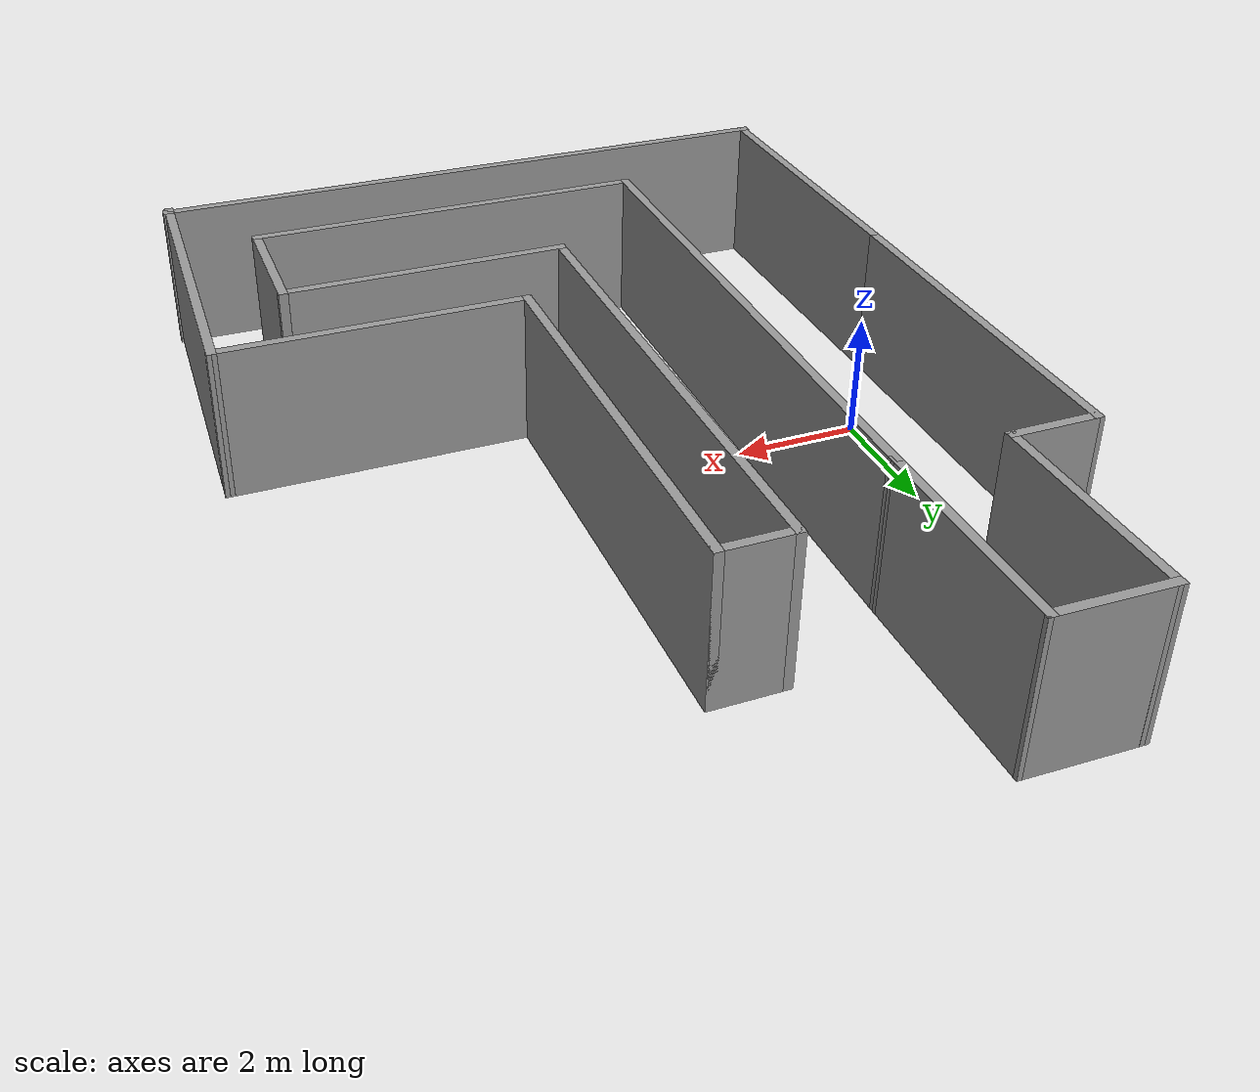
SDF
<?xml version='1.0'?>
<sdf version='1.6'>
  <model name='room'>
    <pose frame=''>4.26083 0.302607 0 0 -0 0</pose>
    <link name='Wall_66'>
      <collision name='Wall_66_Collision'>
        <geometry>
          <box>
            <size>6.19862 0.15 2.5</size>
          </box>
        </geometry>
        <pose frame=''>0 0 1.25 0 -0 0</pose>
      </collision>
      <visual name='Wall_66_Visual'>
        <pose frame=''>0 0 1.25 0 -0 0</pose>
        <geometry>
          <box>
            <size>6.19862 0.15 2.5</size>
          </box>
        </geometry>
        <material>
          <script>
            <uri>file://media/materials/scripts/gazebo.material</uri>
            <name>Gazebo/Grey</name>
          </script>
          <ambient>1 1 1 1</ambient>
        </material>
        <meta>
          <layer>0</layer>
        </meta>
      </visual>
      <pose frame=''>-5.45149 0.872356 0 0 -0 1.56388</pose>
    </link>
    <link name='Wall_68'>
      <collision name='Wall_68_Collision'>
        <geometry>
          <box>
            <size>9.6563 0.15 2.5</size>
          </box>
        </geometry>
        <pose frame=''>0 0 1.25 0 -0 0</pose>
      </collision>
      <visual name='Wall_68_Visual'>
        <pose frame=''>0 0 1.25 0 -0 0</pose>
        <geometry>
          <box>
            <size>9.6563 0.15 2.5</size>
          </box>
        </geometry>
        <material>
          <script>
            <uri>file://media/materials/scripts/gazebo.material</uri>
            <name>Gazebo/Grey</name>
          </script>
          <ambient>1 1 1 1</ambient>
        </material>
        <meta>
          <layer>0</layer>
        </meta>
      </visual>
      <pose frame=''>-2.38333 -0.891441 0 0 -0 -1.5819</pose>
    </link>
    <link name='Wall_69'>
      <collision name='Wall_69_Collision'>
        <geometry>
          <box>
            <size>6.75 0.15 2.5</size>
          </box>
        </geometry>
        <pose frame=''>0 0 1.25 0 -0 0</pose>
      </collision>
      <visual name='Wall_69_Visual'>
        <pose frame=''>0 0 1.25 0 -0 0</pose>
        <geometry>
          <box>
            <size>6.75 0.15 2.5</size>
          </box>
        </geometry>
        <material>
          <script>
            <uri>file://media/materials/scripts/gazebo.material</uri>
            <name>Gazebo/Grey</name>
          </script>
          <ambient>1 1 1 1</ambient>
        </material>
        <meta>
          <layer>0</layer>
        </meta>
      </visual>
      <pose frame=''>0.863902 -5.6443 0 0 -0 0</pose>
    </link>
    <link name='Wall_70'>
      <collision name='Wall_70_Collision'>
        <geometry>
          <box>
            <size>2.25 0.15 2.5</size>
          </box>
        </geometry>
        <pose frame=''>0 0 1.25 0 -0 0</pose>
      </collision>
      <visual name='Wall_70_Visual'>
        <pose frame=''>0 0 1.25 0 -0 0</pose>
        <geometry>
          <box>
            <size>2.25 0.15 2.5</size>
          </box>
        </geometry>
        <material>
          <script>
            <uri>file://media/materials/scripts/gazebo.material</uri>
            <name>Gazebo/Grey</name>
          </script>
          <ambient>1 1 1 1</ambient>
        </material>
        <meta>
          <layer>0</layer>
        </meta>
      </visual>
      <pose frame=''>4.1639 -4.5943 0 0 -0 1.5708</pose>
    </link>
    <link name='Wall_71'>
      <collision name='Wall_71_Collision'>
        <geometry>
          <box>
            <size>4.75 0.15 2.5</size>
          </box>
        </geometry>
        <pose frame=''>0 0 1.25 0 -0 0</pose>
      </collision>
      <visual name='Wall_71_Visual'>
        <pose frame=''>0 0 1.25 0 -0 0</pose>
        <geometry>
          <box>
            <size>4.75 0.15 2.5</size>
          </box>
        </geometry>
        <material>
          <script>
            <uri>file://media/materials/scripts/gazebo.material</uri>
            <name>Gazebo/Grey</name>
          </script>
          <ambient>1 1 1 1</ambient>
        </material>
        <meta>
          <layer>0</layer>
        </meta>
      </visual>
      <pose frame=''>1.8639 -3.5443 0 0 -0 3.14159</pose>
    </link>
    <link name='Wall_72'>
      <collision name='Wall_72_Collision'>
        <geometry>
          <box>
            <size>8.5 0.15 2.5</size>
          </box>
        </geometry>
        <pose frame=''>0 0 1.25 0 -0 0</pose>
      </collision>
      <visual name='Wall_72_Visual'>
        <pose frame=''>0 0 1.25 0 -0 0</pose>
        <geometry>
          <box>
            <size>8.5 0.15 2.5</size>
          </box>
        </geometry>
        <material>
          <script>
            <uri>file://media/materials/scripts/gazebo.material</uri>
            <name>Gazebo/Grey</name>
          </script>
          <ambient>1 1 1 1</ambient>
        </material>
        <meta>
          <layer>0</layer>
        </meta>
      </visual>
      <pose frame=''>-0.436098 0.630704 0 0 -0 1.5708</pose>
    </link>
    <link name='Wall_73'>
      <collision name='Wall_73_Collision'>
        <geometry>
          <box>
            <size>1.25 0.15 2.5</size>
          </box>
        </geometry>
        <pose frame=''>0 0 1.25 0 -0 0</pose>
      </collision>
      <visual name='Wall_73_Visual'>
        <pose frame=''>0 0 1.25 0 -0 0</pose>
        <geometry>
          <box>
            <size>1.25 0.15 2.5</size>
          </box>
        </geometry>
        <material>
          <script>
            <uri>file://media/materials/scripts/gazebo.material</uri>
            <name>Gazebo/Grey</name>
          </script>
          <ambient>1 1 1 1</ambient>
        </material>
        <meta>
          <layer>0</layer>
        </meta>
      </visual>
      <pose frame=''>0.113902 4.8057 0 0 -0 0</pose>
    </link>
    <link name='Wall_74'>
      <collision name='Wall_74_Collision'>
        <geometry>
          <box>
            <size>7 0.15 2.5</size>
          </box>
        </geometry>
        <pose frame=''>0 0 1.25 0 -0 0</pose>
      </collision>
      <visual name='Wall_74_Visual'>
        <pose frame=''>0 0 1.25 0 -0 0</pose>
        <geometry>
          <box>
            <size>7 0.15 2.5</size>
          </box>
        </geometry>
        <material>
          <script>
            <uri>file://media/materials/scripts/gazebo.material</uri>
            <name>Gazebo/Grey</name>
          </script>
          <ambient>1 1 1 1</ambient>
        </material>
        <meta>
          <layer>0</layer>
        </meta>
      </visual>
      <pose frame=''>0.663902 1.3807 0 0 -0 -1.5708</pose>
    </link>
    <link name='Wall_75'>
      <collision name='Wall_75_Collision'>
        <geometry>
          <box>
            <size>5 0.15 2.5</size>
          </box>
        </geometry>
        <pose frame=''>0 0 1.25 0 -0 0</pose>
      </collision>
      <visual name='Wall_75_Visual'>
        <pose frame=''>0 0 1.25 0 -0 0</pose>
        <geometry>
          <box>
            <size>5 0.15 2.5</size>
          </box>
        </geometry>
        <material>
          <script>
            <uri>file://media/materials/scripts/gazebo.material</uri>
            <name>Gazebo/Grey</name>
          </script>
          <ambient>1 1 1 1</ambient>
        </material>
        <meta>
          <layer>0</layer>
        </meta>
      </visual>
      <pose frame=''>3.0889 -2.0443 0 0 -0 0</pose>
    </link>
    <link name='Wall_76'>
      <collision name='Wall_76_Collision'>
        <geometry>
          <box>
            <size>5.35369 0.15 2.5</size>
          </box>
        </geometry>
        <pose frame=''>0 0 1.25 0 -0 0</pose>
      </collision>
      <visual name='Wall_76_Visual'>
        <pose frame=''>0 0 1.25 0 -0 0</pose>
        <geometry>
          <box>
            <size>5.35369 0.15 2.5</size>
          </box>
        </geometry>
        <material>
          <script>
            <uri>file://media/materials/scripts/gazebo.material</uri>
            <name>Gazebo/Grey</name>
          </script>
          <ambient>1 1 1 1</ambient>
        </material>
        <meta>
          <layer>0</layer>
        </meta>
      </visual>
      <pose frame=''>5.44355 -4.64519 0 0 -0 -1.59784</pose>
    </link>
    <link name='Wall_77'>
      <collision name='Wall_77_Collision'>
        <geometry>
          <box>
            <size>11.0742 0.15 2.5</size>
          </box>
        </geometry>
        <pose frame=''>0 0 1.25 0 -0 0</pose>
      </collision>
      <visual name='Wall_77_Visual'>
        <pose frame=''>0 0 1.25 0 -0 0</pose>
        <geometry>
          <box>
            <size>11.0742 0.15 2.5</size>
          </box>
        </geometry>
        <material>
          <script>
            <uri>file://media/materials/scripts/gazebo.material</uri>
            <name>Gazebo/Grey</name>
          </script>
          <ambient>1 1 1 1</ambient>
        </material>
        <meta>
          <layer>0</layer>
        </meta>
      </visual>
      <pose frame=''>-0.053716 -7.16812 0 0 -0 3.1402</pose>
    </link>
    <link name='Wall_78'>
      <collision name='Wall_78_Collision'>
        <geometry>
          <box>
            <size>5.12346 0.15 2.5</size>
          </box>
        </geometry>
        <pose frame=''>0 0 1.25 0 -0 0</pose>
      </collision>
      <visual name='Wall_78_Visual'>
        <pose frame=''>0 0 1.25 0 -0 0</pose>
        <geometry>
          <box>
            <size>5.12346 0.15 2.5</size>
          </box>
        </geometry>
        <material>
          <script>
            <uri>file://media/materials/scripts/gazebo.material</uri>
            <name>Gazebo/Grey</name>
          </script>
          <ambient>1 1 1 1</ambient>
        </material>
        <meta>
          <layer>0</layer>
        </meta>
      </visual>
      <pose frame=''>-5.47652 -4.67379 0 0 -0 1.56915</pose>
    </link>
    <link name='Wall_80'>
      <collision name='Wall_80_Collision'>
        <geometry>
          <box>
            <size>1.5 0.15 2.5</size>
          </box>
        </geometry>
        <pose frame=''>0 0 1.25 0 -0 0</pose>
      </collision>
      <visual name='Wall_80_Visual'>
        <pose frame=''>0 0 1.25 0 -0 0</pose>
        <geometry>
          <box>
            <size>1.5 0.15 2.5</size>
          </box>
        </geometry>
        <material>
          <script>
            <uri>file://media/materials/scripts/gazebo.material</uri>
            <name>Gazebo/Grey</name>
          </script>
          <ambient>1 1 1 1</ambient>
        </material>
        <meta>
          <layer>0</layer>
        </meta>
      </visual>
      <pose frame=''>-4.75556 3.89659 0 0 -0 0</pose>
    </link>
    <link name='Wall_81'>
      <collision name='Wall_81_Collision'>
        <geometry>
          <box>
            <size>3.5 0.15 2.5</size>
          </box>
        </geometry>
        <pose frame=''>0 0 1.25 0 -0 0</pose>
      </collision>
      <visual name='Wall_81_Visual'>
        <pose frame=''>0 0 1.25 0 -0 0</pose>
        <geometry>
          <box>
            <size>3.5 0.15 2.5</size>
          </box>
        </geometry>
        <material>
          <script>
            <uri>file://media/materials/scripts/gazebo.material</uri>
            <name>Gazebo/Grey</name>
          </script>
          <ambient>1 1 1 1</ambient>
        </material>
        <meta>
          <layer>0</layer>
        </meta>
      </visual>
      <pose frame=''>-4.08056 5.57159 0 0 -0 1.5708</pose>
    </link>
    <link name='Wall_83'>
      <collision name='Wall_83_Collision'>
        <geometry>
          <box>
            <size>3.5 0.15 2.5</size>
          </box>
        </geometry>
        <pose frame=''>0 0 1.25 0 -0 0</pose>
      </collision>
      <visual name='Wall_83_Visual'>
        <pose frame=''>0 0 1.25 0 -0 0</pose>
        <geometry>
          <box>
            <size>3.5 0.15 2.5</size>
          </box>
        </geometry>
        <material>
          <script>
            <uri>file://media/materials/scripts/gazebo.material</uri>
            <name>Gazebo/Grey</name>
          </script>
          <ambient>1 1 1 1</ambient>
        </material>
        <meta>
          <layer>0</layer>
        </meta>
      </visual>
      <pose frame=''>-2.33056 5.53641 0 0 -0 1.5708</pose>
    </link>
    <link name='Wall_85'>
      <collision name='Wall_85_Collision'>
        <geometry>
          <box>
            <size>1.90035 0.15 2.5</size>
          </box>
        </geometry>
        <pose frame=''>0 0 1.25 0 -0 0</pose>
      </collision>
      <visual name='Wall_85_Visual'>
        <pose frame=''>0 0 1.25 0 -0 0</pose>
        <geometry>
          <box>
            <size>1.90035 0.15 2.5</size>
          </box>
        </geometry>
        <material>
          <script>
            <uri>file://media/materials/scripts/gazebo.material</uri>
            <name>Gazebo/Grey</name>
          </script>
          <ambient>1 1 1 1</ambient>
        </material>
        <meta>
          <layer>0</layer>
        </meta>
      </visual>
      <pose frame=''>-3.20556 7.229 0 0 -0 -0.020099</pose>
    </link>
    <static>1</static>
  </model>
</sdf>
